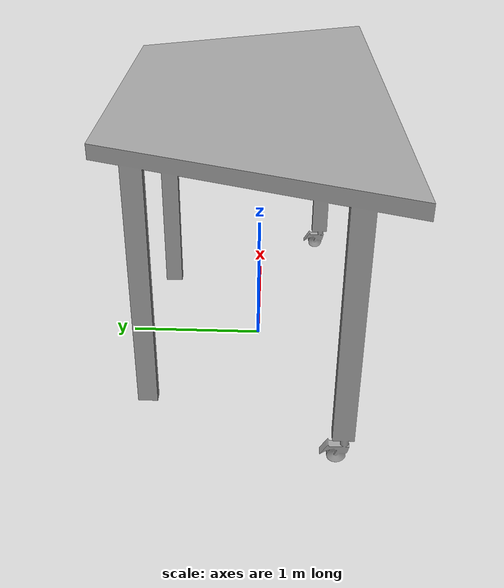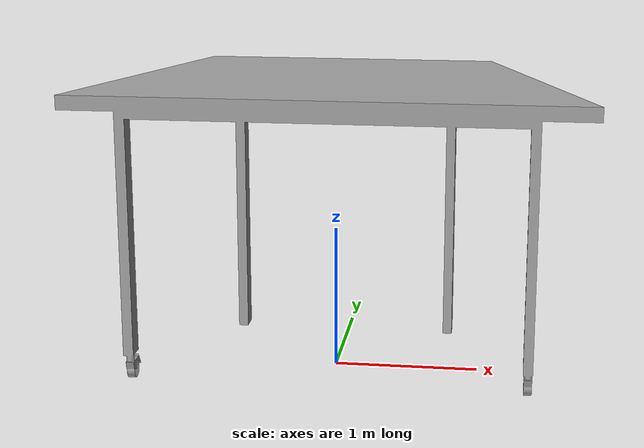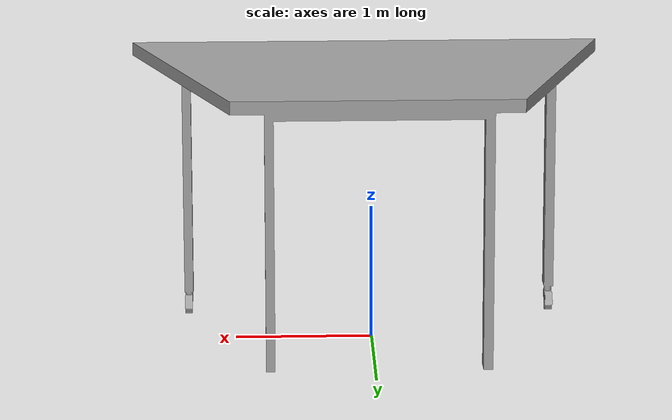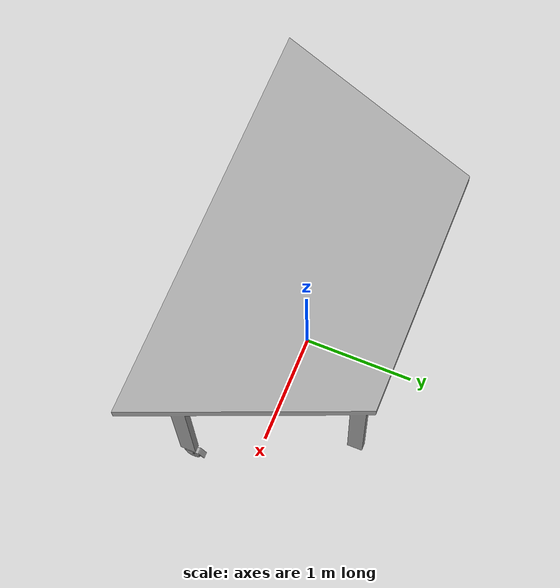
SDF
<?xml version='1.0'?>
<sdf version='1.5'>
  <model name="trapezoid_table">
    <pose>0 0 0 0 0 0</pose>
    <static>false</static>
    <link name='model_body'>
      <visual name="visual">
        <geometry>
          <mesh>
            <uri>model://robert_gazebo/meshes/visual_trapezoid_table.dae</uri>
          </mesh>
         </geometry>
      </visual>

      <collision name="collision">
        <geometry>
          <mesh>
            <uri>model://robert_gazebo/meshes/collision_trapezoid_table.dae</uri>
          </mesh>
        </geometry>
      </collision>

      <inertial>
        <pose>0 0 0 0 0 0</pose>
        <inertia>
          <ixx>1.34</ixx>
          <ixy>0</ixy>
          <ixz>0</ixz>
          <iyy>1.34</iyy>
          <iyz>0</iyz>
          <izz>1.45</izz>
        </inertia>
        <mass>10.0</mass>
      </inertial>
    </link>
  </model>
</sdf>
